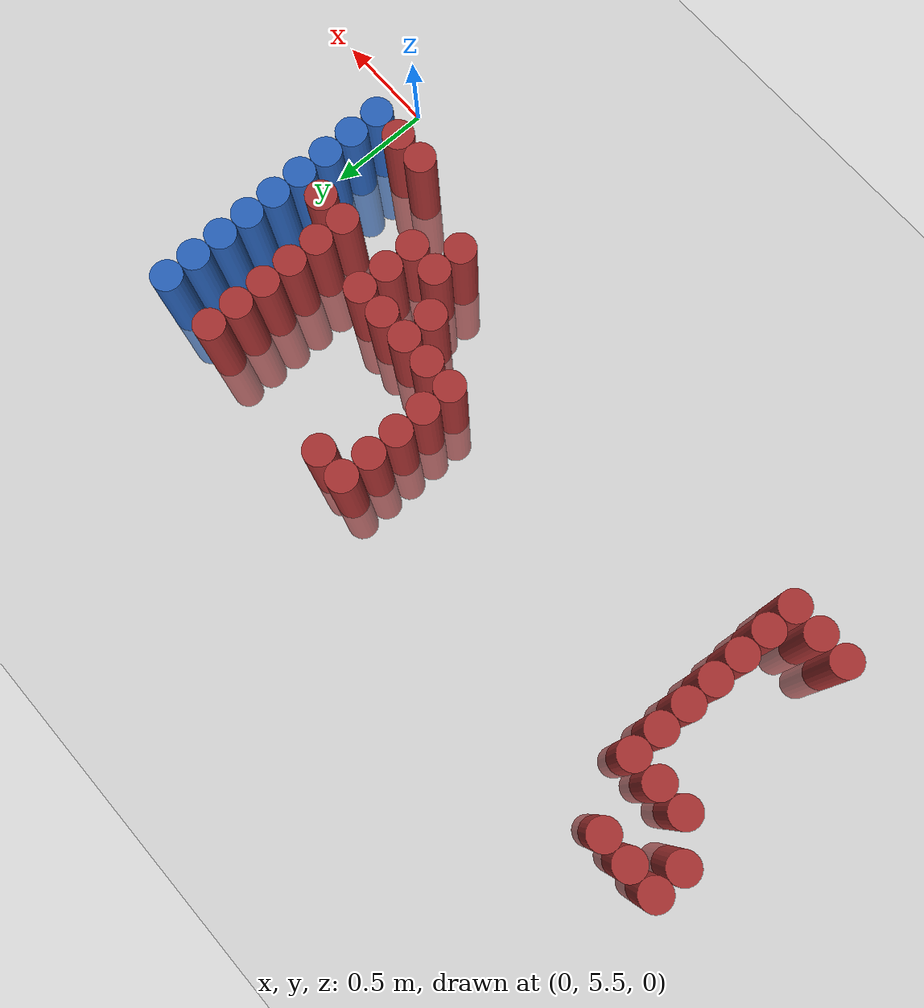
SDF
<sdf version="1.6">
 <world name="default">
  <model name="ground_plane">
   <static>1</static>
   <link name="link">
    <collision name="collision">
     <geometry><plane><normal>0 0 1</normal><size>100 100</size></plane></geometry>
     <surface><friction><ode><mu>100</mu><mu2>50</mu2></ode></friction></surface>
    </collision>
    <visual name="visual">
     <cast_shadows>0</cast_shadows>
     <geometry><plane><normal>0 0 1</normal><size>100 100</size></plane></geometry>
     <material>
      <script><uri>file://media/materials/scripts/gazebo.material</uri><name>Gazebo/Grey</name></script>
     </material>
    </visual>
   </link>
  </model>
  <model name="unit_cylinder_170">
   <static>1</static>
   <pose>-3.375000 6.975000 0.000000 0.000000 0.000000 0.000000</pose>
   <link name="link">
    <inertial>
     <mass>1</mass>
     <inertia><ixx>0.145833</ixx><ixy>0</ixy><ixz>0</ixz><iyy>0.145833</iyy><iyz>0</iyz><izz>0.125</izz></inertia>
    </inertial>
    <collision name="collision">
     <geometry><cylinder><radius>0.075000</radius><length>1</length></cylinder></geometry>
    </collision>
    <visual name="visual">
     <geometry><cylinder><radius>0.075000</radius><length>1</length></cylinder></geometry>
     <material>
      <ambient>0.648000 0.192000 0.192000 1</ambient>
      <diffuse>0.648000 0.192000 0.192000 1</diffuse>
     </material>
     <material>
      <script><name>Gazebo/Grey</name><uri>file://media/materials/scripts/gazebo.material</uri></script>
     </material>
    </visual>
   </link>
  </model>
  <model name="unit_cylinder_171">
   <static>1</static>
   <pose>-3.375000 7.125000 0.000000 0.000000 0.000000 0.000000</pose>
   <link name="link">
    <inertial>
     <mass>1</mass>
     <inertia><ixx>0.145833</ixx><ixy>0</ixy><ixz>0</ixz><iyy>0.145833</iyy><iyz>0</iyz><izz>0.125</izz></inertia>
    </inertial>
    <collision name="collision">
     <geometry><cylinder><radius>0.075000</radius><length>1</length></cylinder></geometry>
    </collision>
    <visual name="visual">
     <geometry><cylinder><radius>0.075000</radius><length>1</length></cylinder></geometry>
     <material>
      <ambient>0.648000 0.192000 0.192000 1</ambient>
      <diffuse>0.648000 0.192000 0.192000 1</diffuse>
     </material>
     <material>
      <script><name>Gazebo/Grey</name><uri>file://media/materials/scripts/gazebo.material</uri></script>
     </material>
    </visual>
   </link>
  </model>
  <model name="unit_cylinder_176">
   <static>1</static>
   <pose>-3.225000 5.925000 0.000000 0.000000 0.000000 0.000000</pose>
   <link name="link">
    <inertial>
     <mass>1</mass>
     <inertia><ixx>0.145833</ixx><ixy>0</ixy><ixz>0</ixz><iyy>0.145833</iyy><iyz>0</iyz><izz>0.125</izz></inertia>
    </inertial>
    <collision name="collision">
     <geometry><cylinder><radius>0.075000</radius><length>1</length></cylinder></geometry>
    </collision>
    <visual name="visual">
     <geometry><cylinder><radius>0.075000</radius><length>1</length></cylinder></geometry>
     <material>
      <ambient>0.648000 0.192000 0.192000 1</ambient>
      <diffuse>0.648000 0.192000 0.192000 1</diffuse>
     </material>
     <material>
      <script><name>Gazebo/Grey</name><uri>file://media/materials/scripts/gazebo.material</uri></script>
     </material>
    </visual>
   </link>
  </model>
  <model name="unit_cylinder_177">
   <static>1</static>
   <pose>-3.225000 6.825000 0.000000 0.000000 0.000000 0.000000</pose>
   <link name="link">
    <inertial>
     <mass>1</mass>
     <inertia><ixx>0.145833</ixx><ixy>0</ixy><ixz>0</ixz><iyy>0.145833</iyy><iyz>0</iyz><izz>0.125</izz></inertia>
    </inertial>
    <collision name="collision">
     <geometry><cylinder><radius>0.075000</radius><length>1</length></cylinder></geometry>
    </collision>
    <visual name="visual">
     <geometry><cylinder><radius>0.075000</radius><length>1</length></cylinder></geometry>
     <material>
      <ambient>0.648000 0.192000 0.192000 1</ambient>
      <diffuse>0.648000 0.192000 0.192000 1</diffuse>
     </material>
     <material>
      <script><name>Gazebo/Grey</name><uri>file://media/materials/scripts/gazebo.material</uri></script>
     </material>
    </visual>
   </link>
  </model>
  <model name="unit_cylinder_178">
   <static>1</static>
   <pose>-3.225000 7.125000 0.000000 0.000000 0.000000 0.000000</pose>
   <link name="link">
    <inertial>
     <mass>1</mass>
     <inertia><ixx>0.145833</ixx><ixy>0</ixy><ixz>0</ixz><iyy>0.145833</iyy><iyz>0</iyz><izz>0.125</izz></inertia>
    </inertial>
    <collision name="collision">
     <geometry><cylinder><radius>0.075000</radius><length>1</length></cylinder></geometry>
    </collision>
    <visual name="visual">
     <geometry><cylinder><radius>0.075000</radius><length>1</length></cylinder></geometry>
     <material>
      <ambient>0.648000 0.192000 0.192000 1</ambient>
      <diffuse>0.648000 0.192000 0.192000 1</diffuse>
     </material>
     <material>
      <script><name>Gazebo/Grey</name><uri>file://media/materials/scripts/gazebo.material</uri></script>
     </material>
    </visual>
   </link>
  </model>
  <model name="unit_cylinder_183">
   <static>1</static>
   <pose>-3.075000 5.925000 0.000000 0.000000 0.000000 0.000000</pose>
   <link name="link">
    <inertial>
     <mass>1</mass>
     <inertia><ixx>0.145833</ixx><ixy>0</ixy><ixz>0</ixz><iyy>0.145833</iyy><iyz>0</iyz><izz>0.125</izz></inertia>
    </inertial>
    <collision name="collision">
     <geometry><cylinder><radius>0.075000</radius><length>1</length></cylinder></geometry>
    </collision>
    <visual name="visual">
     <geometry><cylinder><radius>0.075000</radius><length>1</length></cylinder></geometry>
     <material>
      <ambient>0.648000 0.192000 0.192000 1</ambient>
      <diffuse>0.648000 0.192000 0.192000 1</diffuse>
     </material>
     <material>
      <script><name>Gazebo/Grey</name><uri>file://media/materials/scripts/gazebo.material</uri></script>
     </material>
    </visual>
   </link>
  </model>
  <model name="unit_cylinder_184">
   <static>1</static>
   <pose>-3.075000 6.825000 0.000000 0.000000 0.000000 0.000000</pose>
   <link name="link">
    <inertial>
     <mass>1</mass>
     <inertia><ixx>0.145833</ixx><ixy>0</ixy><ixz>0</ixz><iyy>0.145833</iyy><iyz>0</iyz><izz>0.125</izz></inertia>
    </inertial>
    <collision name="collision">
     <geometry><cylinder><radius>0.075000</radius><length>1</length></cylinder></geometry>
    </collision>
    <visual name="visual">
     <geometry><cylinder><radius>0.075000</radius><length>1</length></cylinder></geometry>
     <material>
      <ambient>0.648000 0.192000 0.192000 1</ambient>
      <diffuse>0.648000 0.192000 0.192000 1</diffuse>
     </material>
     <material>
      <script><name>Gazebo/Grey</name><uri>file://media/materials/scripts/gazebo.material</uri></script>
     </material>
    </visual>
   </link>
  </model>
  <model name="unit_cylinder_185">
   <static>1</static>
   <pose>-3.075000 7.125000 0.000000 0.000000 0.000000 0.000000</pose>
   <link name="link">
    <inertial>
     <mass>1</mass>
     <inertia><ixx>0.145833</ixx><ixy>0</ixy><ixz>0</ixz><iyy>0.145833</iyy><iyz>0</iyz><izz>0.125</izz></inertia>
    </inertial>
    <collision name="collision">
     <geometry><cylinder><radius>0.075000</radius><length>1</length></cylinder></geometry>
    </collision>
    <visual name="visual">
     <geometry><cylinder><radius>0.075000</radius><length>1</length></cylinder></geometry>
     <material>
      <ambient>0.648000 0.192000 0.192000 1</ambient>
      <diffuse>0.648000 0.192000 0.192000 1</diffuse>
     </material>
     <material>
      <script><name>Gazebo/Grey</name><uri>file://media/materials/scripts/gazebo.material</uri></script>
     </material>
    </visual>
   </link>
  </model>
  <model name="unit_cylinder_190">
   <static>1</static>
   <pose>-2.925000 5.925000 0.000000 0.000000 0.000000 0.000000</pose>
   <link name="link">
    <inertial>
     <mass>1</mass>
     <inertia><ixx>0.145833</ixx><ixy>0</ixy><ixz>0</ixz><iyy>0.145833</iyy><iyz>0</iyz><izz>0.125</izz></inertia>
    </inertial>
    <collision name="collision">
     <geometry><cylinder><radius>0.075000</radius><length>1</length></cylinder></geometry>
    </collision>
    <visual name="visual">
     <geometry><cylinder><radius>0.075000</radius><length>1</length></cylinder></geometry>
     <material>
      <ambient>0.648000 0.192000 0.192000 1</ambient>
      <diffuse>0.648000 0.192000 0.192000 1</diffuse>
     </material>
     <material>
      <script><name>Gazebo/Grey</name><uri>file://media/materials/scripts/gazebo.material</uri></script>
     </material>
    </visual>
   </link>
  </model>
  <model name="unit_cylinder_191">
   <static>1</static>
   <pose>-2.925000 6.075000 0.000000 0.000000 0.000000 0.000000</pose>
   <link name="link">
    <inertial>
     <mass>1</mass>
     <inertia><ixx>0.145833</ixx><ixy>0</ixy><ixz>0</ixz><iyy>0.145833</iyy><iyz>0</iyz><izz>0.125</izz></inertia>
    </inertial>
    <collision name="collision">
     <geometry><cylinder><radius>0.075000</radius><length>1</length></cylinder></geometry>
    </collision>
    <visual name="visual">
     <geometry><cylinder><radius>0.075000</radius><length>1</length></cylinder></geometry>
     <material>
      <ambient>0.648000 0.192000 0.192000 1</ambient>
      <diffuse>0.648000 0.192000 0.192000 1</diffuse>
     </material>
     <material>
      <script><name>Gazebo/Grey</name><uri>file://media/materials/scripts/gazebo.material</uri></script>
     </material>
    </visual>
   </link>
  </model>
  <model name="unit_cylinder_192">
   <static>1</static>
   <pose>-2.925000 6.225000 0.000000 0.000000 0.000000 0.000000</pose>
   <link name="link">
    <inertial>
     <mass>1</mass>
     <inertia><ixx>0.145833</ixx><ixy>0</ixy><ixz>0</ixz><iyy>0.145833</iyy><iyz>0</iyz><izz>0.125</izz></inertia>
    </inertial>
    <collision name="collision">
     <geometry><cylinder><radius>0.075000</radius><length>1</length></cylinder></geometry>
    </collision>
    <visual name="visual">
     <geometry><cylinder><radius>0.075000</radius><length>1</length></cylinder></geometry>
     <material>
      <ambient>0.648000 0.192000 0.192000 1</ambient>
      <diffuse>0.648000 0.192000 0.192000 1</diffuse>
     </material>
     <material>
      <script><name>Gazebo/Grey</name><uri>file://media/materials/scripts/gazebo.material</uri></script>
     </material>
    </visual>
   </link>
  </model>
  <model name="unit_cylinder_193">
   <static>1</static>
   <pose>-2.925000 6.375000 0.000000 0.000000 0.000000 0.000000</pose>
   <link name="link">
    <inertial>
     <mass>1</mass>
     <inertia><ixx>0.145833</ixx><ixy>0</ixy><ixz>0</ixz><iyy>0.145833</iyy><iyz>0</iyz><izz>0.125</izz></inertia>
    </inertial>
    <collision name="collision">
     <geometry><cylinder><radius>0.075000</radius><length>1</length></cylinder></geometry>
    </collision>
    <visual name="visual">
     <geometry><cylinder><radius>0.075000</radius><length>1</length></cylinder></geometry>
     <material>
      <ambient>0.648000 0.192000 0.192000 1</ambient>
      <diffuse>0.648000 0.192000 0.192000 1</diffuse>
     </material>
     <material>
      <script><name>Gazebo/Grey</name><uri>file://media/materials/scripts/gazebo.material</uri></script>
     </material>
    </visual>
   </link>
  </model>
  <model name="unit_cylinder_194">
   <static>1</static>
   <pose>-2.925000 6.525000 0.000000 0.000000 0.000000 0.000000</pose>
   <link name="link">
    <inertial>
     <mass>1</mass>
     <inertia><ixx>0.145833</ixx><ixy>0</ixy><ixz>0</ixz><iyy>0.145833</iyy><iyz>0</iyz><izz>0.125</izz></inertia>
    </inertial>
    <collision name="collision">
     <geometry><cylinder><radius>0.075000</radius><length>1</length></cylinder></geometry>
    </collision>
    <visual name="visual">
     <geometry><cylinder><radius>0.075000</radius><length>1</length></cylinder></geometry>
     <material>
      <ambient>0.648000 0.192000 0.192000 1</ambient>
      <diffuse>0.648000 0.192000 0.192000 1</diffuse>
     </material>
     <material>
      <script><name>Gazebo/Grey</name><uri>file://media/materials/scripts/gazebo.material</uri></script>
     </material>
    </visual>
   </link>
  </model>
  <model name="unit_cylinder_195">
   <static>1</static>
   <pose>-2.925000 6.675000 0.000000 0.000000 0.000000 0.000000</pose>
   <link name="link">
    <inertial>
     <mass>1</mass>
     <inertia><ixx>0.145833</ixx><ixy>0</ixy><ixz>0</ixz><iyy>0.145833</iyy><iyz>0</iyz><izz>0.125</izz></inertia>
    </inertial>
    <collision name="collision">
     <geometry><cylinder><radius>0.075000</radius><length>1</length></cylinder></geometry>
    </collision>
    <visual name="visual">
     <geometry><cylinder><radius>0.075000</radius><length>1</length></cylinder></geometry>
     <material>
      <ambient>0.648000 0.192000 0.192000 1</ambient>
      <diffuse>0.648000 0.192000 0.192000 1</diffuse>
     </material>
     <material>
      <script><name>Gazebo/Grey</name><uri>file://media/materials/scripts/gazebo.material</uri></script>
     </material>
    </visual>
   </link>
  </model>
  <model name="unit_cylinder_196">
   <static>1</static>
   <pose>-2.925000 6.825000 0.000000 0.000000 0.000000 0.000000</pose>
   <link name="link">
    <inertial>
     <mass>1</mass>
     <inertia><ixx>0.145833</ixx><ixy>0</ixy><ixz>0</ixz><iyy>0.145833</iyy><iyz>0</iyz><izz>0.125</izz></inertia>
    </inertial>
    <collision name="collision">
     <geometry><cylinder><radius>0.075000</radius><length>1</length></cylinder></geometry>
    </collision>
    <visual name="visual">
     <geometry><cylinder><radius>0.075000</radius><length>1</length></cylinder></geometry>
     <material>
      <ambient>0.648000 0.192000 0.192000 1</ambient>
      <diffuse>0.648000 0.192000 0.192000 1</diffuse>
     </material>
     <material>
      <script><name>Gazebo/Grey</name><uri>file://media/materials/scripts/gazebo.material</uri></script>
     </material>
    </visual>
   </link>
  </model>
  <model name="unit_cylinder_215">
   <static>1</static>
   <pose>-1.275000 6.375000 0.000000 0.000000 0.000000 0.000000</pose>
   <link name="link">
    <inertial>
     <mass>1</mass>
     <inertia><ixx>0.145833</ixx><ixy>0</ixy><ixz>0</ixz><iyy>0.145833</iyy><iyz>0</iyz><izz>0.125</izz></inertia>
    </inertial>
    <collision name="collision">
     <geometry><cylinder><radius>0.075000</radius><length>1</length></cylinder></geometry>
    </collision>
    <visual name="visual">
     <geometry><cylinder><radius>0.075000</radius><length>1</length></cylinder></geometry>
     <material>
      <ambient>0.648000 0.192000 0.192000 1</ambient>
      <diffuse>0.648000 0.192000 0.192000 1</diffuse>
     </material>
     <material>
      <script><name>Gazebo/Grey</name><uri>file://media/materials/scripts/gazebo.material</uri></script>
     </material>
    </visual>
   </link>
  </model>
  <model name="unit_cylinder_216">
   <static>1</static>
   <pose>-1.275000 6.525000 0.000000 0.000000 0.000000 0.000000</pose>
   <link name="link">
    <inertial>
     <mass>1</mass>
     <inertia><ixx>0.145833</ixx><ixy>0</ixy><ixz>0</ixz><iyy>0.145833</iyy><iyz>0</iyz><izz>0.125</izz></inertia>
    </inertial>
    <collision name="collision">
     <geometry><cylinder><radius>0.075000</radius><length>1</length></cylinder></geometry>
    </collision>
    <visual name="visual">
     <geometry><cylinder><radius>0.075000</radius><length>1</length></cylinder></geometry>
     <material>
      <ambient>0.648000 0.192000 0.192000 1</ambient>
      <diffuse>0.648000 0.192000 0.192000 1</diffuse>
     </material>
     <material>
      <script><name>Gazebo/Grey</name><uri>file://media/materials/scripts/gazebo.material</uri></script>
     </material>
    </visual>
   </link>
  </model>
  <model name="unit_cylinder_217">
   <static>1</static>
   <pose>-1.275000 6.675000 0.000000 0.000000 0.000000 0.000000</pose>
   <link name="link">
    <inertial>
     <mass>1</mass>
     <inertia><ixx>0.145833</ixx><ixy>0</ixy><ixz>0</ixz><iyy>0.145833</iyy><iyz>0</iyz><izz>0.125</izz></inertia>
    </inertial>
    <collision name="collision">
     <geometry><cylinder><radius>0.075000</radius><length>1</length></cylinder></geometry>
    </collision>
    <visual name="visual">
     <geometry><cylinder><radius>0.075000</radius><length>1</length></cylinder></geometry>
     <material>
      <ambient>0.648000 0.192000 0.192000 1</ambient>
      <diffuse>0.648000 0.192000 0.192000 1</diffuse>
     </material>
     <material>
      <script><name>Gazebo/Grey</name><uri>file://media/materials/scripts/gazebo.material</uri></script>
     </material>
    </visual>
   </link>
  </model>
  <model name="unit_cylinder_218">
   <static>1</static>
   <pose>-1.275000 6.825000 0.000000 0.000000 0.000000 0.000000</pose>
   <link name="link">
    <inertial>
     <mass>1</mass>
     <inertia><ixx>0.145833</ixx><ixy>0</ixy><ixz>0</ixz><iyy>0.145833</iyy><iyz>0</iyz><izz>0.125</izz></inertia>
    </inertial>
    <collision name="collision">
     <geometry><cylinder><radius>0.075000</radius><length>1</length></cylinder></geometry>
    </collision>
    <visual name="visual">
     <geometry><cylinder><radius>0.075000</radius><length>1</length></cylinder></geometry>
     <material>
      <ambient>0.648000 0.192000 0.192000 1</ambient>
      <diffuse>0.648000 0.192000 0.192000 1</diffuse>
     </material>
     <material>
      <script><name>Gazebo/Grey</name><uri>file://media/materials/scripts/gazebo.material</uri></script>
     </material>
    </visual>
   </link>
  </model>
  <model name="unit_cylinder_219">
   <static>1</static>
   <pose>-1.275000 6.975000 0.000000 0.000000 0.000000 0.000000</pose>
   <link name="link">
    <inertial>
     <mass>1</mass>
     <inertia><ixx>0.145833</ixx><ixy>0</ixy><ixz>0</ixz><iyy>0.145833</iyy><iyz>0</iyz><izz>0.125</izz></inertia>
    </inertial>
    <collision name="collision">
     <geometry><cylinder><radius>0.075000</radius><length>1</length></cylinder></geometry>
    </collision>
    <visual name="visual">
     <geometry><cylinder><radius>0.075000</radius><length>1</length></cylinder></geometry>
     <material>
      <ambient>0.648000 0.192000 0.192000 1</ambient>
      <diffuse>0.648000 0.192000 0.192000 1</diffuse>
     </material>
     <material>
      <script><name>Gazebo/Grey</name><uri>file://media/materials/scripts/gazebo.material</uri></script>
     </material>
    </visual>
   </link>
  </model>
  <model name="unit_cylinder_220">
   <static>1</static>
   <pose>-1.125000 6.375000 0.000000 0.000000 0.000000 0.000000</pose>
   <link name="link">
    <inertial>
     <mass>1</mass>
     <inertia><ixx>0.145833</ixx><ixy>0</ixy><ixz>0</ixz><iyy>0.145833</iyy><iyz>0</iyz><izz>0.125</izz></inertia>
    </inertial>
    <collision name="collision">
     <geometry><cylinder><radius>0.075000</radius><length>1</length></cylinder></geometry>
    </collision>
    <visual name="visual">
     <geometry><cylinder><radius>0.075000</radius><length>1</length></cylinder></geometry>
     <material>
      <ambient>0.648000 0.192000 0.192000 1</ambient>
      <diffuse>0.648000 0.192000 0.192000 1</diffuse>
     </material>
     <material>
      <script><name>Gazebo/Grey</name><uri>file://media/materials/scripts/gazebo.material</uri></script>
     </material>
    </visual>
   </link>
  </model>
  <model name="unit_cylinder_221">
   <static>1</static>
   <pose>-1.125000 6.975000 0.000000 0.000000 0.000000 0.000000</pose>
   <link name="link">
    <inertial>
     <mass>1</mass>
     <inertia><ixx>0.145833</ixx><ixy>0</ixy><ixz>0</ixz><iyy>0.145833</iyy><iyz>0</iyz><izz>0.125</izz></inertia>
    </inertial>
    <collision name="collision">
     <geometry><cylinder><radius>0.075000</radius><length>1</length></cylinder></geometry>
    </collision>
    <visual name="visual">
     <geometry><cylinder><radius>0.075000</radius><length>1</length></cylinder></geometry>
     <material>
      <ambient>0.648000 0.192000 0.192000 1</ambient>
      <diffuse>0.648000 0.192000 0.192000 1</diffuse>
     </material>
     <material>
      <script><name>Gazebo/Grey</name><uri>file://media/materials/scripts/gazebo.material</uri></script>
     </material>
    </visual>
   </link>
  </model>
  <model name="unit_cylinder_223">
   <static>1</static>
   <pose>-0.975000 6.225000 0.000000 0.000000 0.000000 0.000000</pose>
   <link name="link">
    <inertial>
     <mass>1</mass>
     <inertia><ixx>0.145833</ixx><ixy>0</ixy><ixz>0</ixz><iyy>0.145833</iyy><iyz>0</iyz><izz>0.125</izz></inertia>
    </inertial>
    <collision name="collision">
     <geometry><cylinder><radius>0.075000</radius><length>1</length></cylinder></geometry>
    </collision>
    <visual name="visual">
     <geometry><cylinder><radius>0.075000</radius><length>1</length></cylinder></geometry>
     <material>
      <ambient>0.648000 0.192000 0.192000 1</ambient>
      <diffuse>0.648000 0.192000 0.192000 1</diffuse>
     </material>
     <material>
      <script><name>Gazebo/Grey</name><uri>file://media/materials/scripts/gazebo.material</uri></script>
     </material>
    </visual>
   </link>
  </model>
  <model name="unit_cylinder_224">
   <static>1</static>
   <pose>-0.975000 6.375000 0.000000 0.000000 0.000000 0.000000</pose>
   <link name="link">
    <inertial>
     <mass>1</mass>
     <inertia><ixx>0.145833</ixx><ixy>0</ixy><ixz>0</ixz><iyy>0.145833</iyy><iyz>0</iyz><izz>0.125</izz></inertia>
    </inertial>
    <collision name="collision">
     <geometry><cylinder><radius>0.075000</radius><length>1</length></cylinder></geometry>
    </collision>
    <visual name="visual">
     <geometry><cylinder><radius>0.075000</radius><length>1</length></cylinder></geometry>
     <material>
      <ambient>0.648000 0.192000 0.192000 1</ambient>
      <diffuse>0.648000 0.192000 0.192000 1</diffuse>
     </material>
     <material>
      <script><name>Gazebo/Grey</name><uri>file://media/materials/scripts/gazebo.material</uri></script>
     </material>
    </visual>
   </link>
  </model>
  <model name="unit_cylinder_227">
   <static>1</static>
   <pose>-0.825000 5.925000 0.000000 0.000000 0.000000 0.000000</pose>
   <link name="link">
    <inertial>
     <mass>1</mass>
     <inertia><ixx>0.145833</ixx><ixy>0</ixy><ixz>0</ixz><iyy>0.145833</iyy><iyz>0</iyz><izz>0.125</izz></inertia>
    </inertial>
    <collision name="collision">
     <geometry><cylinder><radius>0.075000</radius><length>1</length></cylinder></geometry>
    </collision>
    <visual name="visual">
     <geometry><cylinder><radius>0.075000</radius><length>1</length></cylinder></geometry>
     <material>
      <ambient>0.648000 0.192000 0.192000 1</ambient>
      <diffuse>0.648000 0.192000 0.192000 1</diffuse>
     </material>
     <material>
      <script><name>Gazebo/Grey</name><uri>file://media/materials/scripts/gazebo.material</uri></script>
     </material>
    </visual>
   </link>
  </model>
  <model name="unit_cylinder_228">
   <static>1</static>
   <pose>-0.825000 6.075000 0.000000 0.000000 0.000000 0.000000</pose>
   <link name="link">
    <inertial>
     <mass>1</mass>
     <inertia><ixx>0.145833</ixx><ixy>0</ixy><ixz>0</ixz><iyy>0.145833</iyy><iyz>0</iyz><izz>0.125</izz></inertia>
    </inertial>
    <collision name="collision">
     <geometry><cylinder><radius>0.075000</radius><length>1</length></cylinder></geometry>
    </collision>
    <visual name="visual">
     <geometry><cylinder><radius>0.075000</radius><length>1</length></cylinder></geometry>
     <material>
      <ambient>0.648000 0.192000 0.192000 1</ambient>
      <diffuse>0.648000 0.192000 0.192000 1</diffuse>
     </material>
     <material>
      <script><name>Gazebo/Grey</name><uri>file://media/materials/scripts/gazebo.material</uri></script>
     </material>
    </visual>
   </link>
  </model>
  <model name="unit_cylinder_229">
   <static>1</static>
   <pose>-0.825000 6.375000 0.000000 0.000000 0.000000 0.000000</pose>
   <link name="link">
    <inertial>
     <mass>1</mass>
     <inertia><ixx>0.145833</ixx><ixy>0</ixy><ixz>0</ixz><iyy>0.145833</iyy><iyz>0</iyz><izz>0.125</izz></inertia>
    </inertial>
    <collision name="collision">
     <geometry><cylinder><radius>0.075000</radius><length>1</length></cylinder></geometry>
    </collision>
    <visual name="visual">
     <geometry><cylinder><radius>0.075000</radius><length>1</length></cylinder></geometry>
     <material>
      <ambient>0.648000 0.192000 0.192000 1</ambient>
      <diffuse>0.648000 0.192000 0.192000 1</diffuse>
     </material>
     <material>
      <script><name>Gazebo/Grey</name><uri>file://media/materials/scripts/gazebo.material</uri></script>
     </material>
    </visual>
   </link>
  </model>
  <model name="unit_cylinder_236">
   <static>1</static>
   <pose>-0.675000 6.075000 0.000000 0.000000 0.000000 0.000000</pose>
   <link name="link">
    <inertial>
     <mass>1</mass>
     <inertia><ixx>0.145833</ixx><ixy>0</ixy><ixz>0</ixz><iyy>0.145833</iyy><iyz>0</iyz><izz>0.125</izz></inertia>
    </inertial>
    <collision name="collision">
     <geometry><cylinder><radius>0.075000</radius><length>1</length></cylinder></geometry>
    </collision>
    <visual name="visual">
     <geometry><cylinder><radius>0.075000</radius><length>1</length></cylinder></geometry>
     <material>
      <ambient>0.648000 0.192000 0.192000 1</ambient>
      <diffuse>0.648000 0.192000 0.192000 1</diffuse>
     </material>
     <material>
      <script><name>Gazebo/Grey</name><uri>file://media/materials/scripts/gazebo.material</uri></script>
     </material>
    </visual>
   </link>
  </model>
  <model name="unit_cylinder_237">
   <static>1</static>
   <pose>-0.675000 6.225000 0.000000 0.000000 0.000000 0.000000</pose>
   <link name="link">
    <inertial>
     <mass>1</mass>
     <inertia><ixx>0.145833</ixx><ixy>0</ixy><ixz>0</ixz><iyy>0.145833</iyy><iyz>0</iyz><izz>0.125</izz></inertia>
    </inertial>
    <collision name="collision">
     <geometry><cylinder><radius>0.075000</radius><length>1</length></cylinder></geometry>
    </collision>
    <visual name="visual">
     <geometry><cylinder><radius>0.075000</radius><length>1</length></cylinder></geometry>
     <material>
      <ambient>0.648000 0.192000 0.192000 1</ambient>
      <diffuse>0.648000 0.192000 0.192000 1</diffuse>
     </material>
     <material>
      <script><name>Gazebo/Grey</name><uri>file://media/materials/scripts/gazebo.material</uri></script>
     </material>
    </visual>
   </link>
  </model>
  <model name="unit_cylinder_238">
   <static>1</static>
   <pose>-0.675000 6.375000 0.000000 0.000000 0.000000 0.000000</pose>
   <link name="link">
    <inertial>
     <mass>1</mass>
     <inertia><ixx>0.145833</ixx><ixy>0</ixy><ixz>0</ixz><iyy>0.145833</iyy><iyz>0</iyz><izz>0.125</izz></inertia>
    </inertial>
    <collision name="collision">
     <geometry><cylinder><radius>0.075000</radius><length>1</length></cylinder></geometry>
    </collision>
    <visual name="visual">
     <geometry><cylinder><radius>0.075000</radius><length>1</length></cylinder></geometry>
     <material>
      <ambient>0.648000 0.192000 0.192000 1</ambient>
      <diffuse>0.648000 0.192000 0.192000 1</diffuse>
     </material>
     <material>
      <script><name>Gazebo/Grey</name><uri>file://media/materials/scripts/gazebo.material</uri></script>
     </material>
    </visual>
   </link>
  </model>
  <model name="unit_cylinder_246">
   <static>1</static>
   <pose>-0.375000 5.775000 0.000000 0.000000 0.000000 0.000000</pose>
   <link name="link">
    <inertial>
     <mass>1</mass>
     <inertia><ixx>0.145833</ixx><ixy>0</ixy><ixz>0</ixz><iyy>0.145833</iyy><iyz>0</iyz><izz>0.125</izz></inertia>
    </inertial>
    <collision name="collision">
     <geometry><cylinder><radius>0.075000</radius><length>1</length></cylinder></geometry>
    </collision>
    <visual name="visual">
     <geometry><cylinder><radius>0.075000</radius><length>1</length></cylinder></geometry>
     <material>
      <ambient>0.648000 0.192000 0.192000 1</ambient>
      <diffuse>0.648000 0.192000 0.192000 1</diffuse>
     </material>
     <material>
      <script><name>Gazebo/Grey</name><uri>file://media/materials/scripts/gazebo.material</uri></script>
     </material>
    </visual>
   </link>
  </model>
  <model name="unit_cylinder_247">
   <static>1</static>
   <pose>-0.375000 6.225000 0.000000 0.000000 0.000000 0.000000</pose>
   <link name="link">
    <inertial>
     <mass>1</mass>
     <inertia><ixx>0.145833</ixx><ixy>0</ixy><ixz>0</ixz><iyy>0.145833</iyy><iyz>0</iyz><izz>0.125</izz></inertia>
    </inertial>
    <collision name="collision">
     <geometry><cylinder><radius>0.075000</radius><length>1</length></cylinder></geometry>
    </collision>
    <visual name="visual">
     <geometry><cylinder><radius>0.075000</radius><length>1</length></cylinder></geometry>
     <material>
      <ambient>0.648000 0.192000 0.192000 1</ambient>
      <diffuse>0.648000 0.192000 0.192000 1</diffuse>
     </material>
     <material>
      <script><name>Gazebo/Grey</name><uri>file://media/materials/scripts/gazebo.material</uri></script>
     </material>
    </visual>
   </link>
  </model>
  <model name="unit_cylinder_248">
   <static>1</static>
   <pose>-0.375000 6.375000 0.000000 0.000000 0.000000 0.000000</pose>
   <link name="link">
    <inertial>
     <mass>1</mass>
     <inertia><ixx>0.145833</ixx><ixy>0</ixy><ixz>0</ixz><iyy>0.145833</iyy><iyz>0</iyz><izz>0.125</izz></inertia>
    </inertial>
    <collision name="collision">
     <geometry><cylinder><radius>0.075000</radius><length>1</length></cylinder></geometry>
    </collision>
    <visual name="visual">
     <geometry><cylinder><radius>0.075000</radius><length>1</length></cylinder></geometry>
     <material>
      <ambient>0.648000 0.192000 0.192000 1</ambient>
      <diffuse>0.648000 0.192000 0.192000 1</diffuse>
     </material>
     <material>
      <script><name>Gazebo/Grey</name><uri>file://media/materials/scripts/gazebo.material</uri></script>
     </material>
    </visual>
   </link>
  </model>
  <model name="unit_cylinder_249">
   <static>1</static>
   <pose>-0.375000 6.525000 0.000000 0.000000 0.000000 0.000000</pose>
   <link name="link">
    <inertial>
     <mass>1</mass>
     <inertia><ixx>0.145833</ixx><ixy>0</ixy><ixz>0</ixz><iyy>0.145833</iyy><iyz>0</iyz><izz>0.125</izz></inertia>
    </inertial>
    <collision name="collision">
     <geometry><cylinder><radius>0.075000</radius><length>1</length></cylinder></geometry>
    </collision>
    <visual name="visual">
     <geometry><cylinder><radius>0.075000</radius><length>1</length></cylinder></geometry>
     <material>
      <ambient>0.648000 0.192000 0.192000 1</ambient>
      <diffuse>0.648000 0.192000 0.192000 1</diffuse>
     </material>
     <material>
      <script><name>Gazebo/Grey</name><uri>file://media/materials/scripts/gazebo.material</uri></script>
     </material>
    </visual>
   </link>
  </model>
  <model name="unit_cylinder_250">
   <static>1</static>
   <pose>-0.375000 6.675000 0.000000 0.000000 0.000000 0.000000</pose>
   <link name="link">
    <inertial>
     <mass>1</mass>
     <inertia><ixx>0.145833</ixx><ixy>0</ixy><ixz>0</ixz><iyy>0.145833</iyy><iyz>0</iyz><izz>0.125</izz></inertia>
    </inertial>
    <collision name="collision">
     <geometry><cylinder><radius>0.075000</radius><length>1</length></cylinder></geometry>
    </collision>
    <visual name="visual">
     <geometry><cylinder><radius>0.075000</radius><length>1</length></cylinder></geometry>
     <material>
      <ambient>0.648000 0.192000 0.192000 1</ambient>
      <diffuse>0.648000 0.192000 0.192000 1</diffuse>
     </material>
     <material>
      <script><name>Gazebo/Grey</name><uri>file://media/materials/scripts/gazebo.material</uri></script>
     </material>
    </visual>
   </link>
  </model>
  <model name="unit_cylinder_251">
   <static>1</static>
   <pose>-0.375000 6.825000 0.000000 0.000000 0.000000 0.000000</pose>
   <link name="link">
    <inertial>
     <mass>1</mass>
     <inertia><ixx>0.145833</ixx><ixy>0</ixy><ixz>0</ixz><iyy>0.145833</iyy><iyz>0</iyz><izz>0.125</izz></inertia>
    </inertial>
    <collision name="collision">
     <geometry><cylinder><radius>0.075000</radius><length>1</length></cylinder></geometry>
    </collision>
    <visual name="visual">
     <geometry><cylinder><radius>0.075000</radius><length>1</length></cylinder></geometry>
     <material>
      <ambient>0.648000 0.192000 0.192000 1</ambient>
      <diffuse>0.648000 0.192000 0.192000 1</diffuse>
     </material>
     <material>
      <script><name>Gazebo/Grey</name><uri>file://media/materials/scripts/gazebo.material</uri></script>
     </material>
    </visual>
   </link>
  </model>
  <model name="unit_cylinder_252">
   <static>1</static>
   <pose>-0.375000 6.975000 0.000000 0.000000 0.000000 0.000000</pose>
   <link name="link">
    <inertial>
     <mass>1</mass>
     <inertia><ixx>0.145833</ixx><ixy>0</ixy><ixz>0</ixz><iyy>0.145833</iyy><iyz>0</iyz><izz>0.125</izz></inertia>
    </inertial>
    <collision name="collision">
     <geometry><cylinder><radius>0.075000</radius><length>1</length></cylinder></geometry>
    </collision>
    <visual name="visual">
     <geometry><cylinder><radius>0.075000</radius><length>1</length></cylinder></geometry>
     <material>
      <ambient>0.648000 0.192000 0.192000 1</ambient>
      <diffuse>0.648000 0.192000 0.192000 1</diffuse>
     </material>
     <material>
      <script><name>Gazebo/Grey</name><uri>file://media/materials/scripts/gazebo.material</uri></script>
     </material>
    </visual>
   </link>
  </model>
  <model name="unit_cylinder_257">
   <static>1</static>
   <pose>-0.225000 5.775000 0.000000 0.000000 0.000000 0.000000</pose>
   <link name="link">
    <inertial>
     <mass>1</mass>
     <inertia><ixx>0.145833</ixx><ixy>0</ixy><ixz>0</ixz><iyy>0.145833</iyy><iyz>0</iyz><izz>0.125</izz></inertia>
    </inertial>
    <collision name="collision">
     <geometry><cylinder><radius>0.075000</radius><length>1</length></cylinder></geometry>
    </collision>
    <visual name="visual">
     <geometry><cylinder><radius>0.075000</radius><length>1</length></cylinder></geometry>
     <material>
      <ambient>0.648000 0.192000 0.192000 1</ambient>
      <diffuse>0.648000 0.192000 0.192000 1</diffuse>
     </material>
     <material>
      <script><name>Gazebo/Grey</name><uri>file://media/materials/scripts/gazebo.material</uri></script>
     </material>
    </visual>
   </link>
  </model>
  <model name="unit_cylinder_258">
   <static>1</static>
   <pose>-0.225000 6.225000 0.000000 0.000000 0.000000 0.000000</pose>
   <link name="link">
    <inertial>
     <mass>1</mass>
     <inertia><ixx>0.145833</ixx><ixy>0</ixy><ixz>0</ixz><iyy>0.145833</iyy><iyz>0</iyz><izz>0.125</izz></inertia>
    </inertial>
    <collision name="collision">
     <geometry><cylinder><radius>0.075000</radius><length>1</length></cylinder></geometry>
    </collision>
    <visual name="visual">
     <geometry><cylinder><radius>0.075000</radius><length>1</length></cylinder></geometry>
     <material>
      <ambient>0.648000 0.192000 0.192000 1</ambient>
      <diffuse>0.648000 0.192000 0.192000 1</diffuse>
     </material>
     <material>
      <script><name>Gazebo/Grey</name><uri>file://media/materials/scripts/gazebo.material</uri></script>
     </material>
    </visual>
   </link>
  </model>
  <model name="unit_cylinder_267">
   <static>1</static>
   <pose>-0.075000 5.775000 0.000000 0.000000 0.000000 0.000000</pose>
   <link name="link">
    <inertial>
     <mass>1</mass>
     <inertia><ixx>0.145833</ixx><ixy>0</ixy><ixz>0</ixz><iyy>0.145833</iyy><iyz>0</iyz><izz>0.125</izz></inertia>
    </inertial>
    <collision name="collision">
     <geometry><cylinder><radius>0.075000</radius><length>1</length></cylinder></geometry>
    </collision>
    <visual name="visual">
     <geometry><cylinder><radius>0.075000</radius><length>1</length></cylinder></geometry>
     <material>
      <ambient>0.152000 0.379000 0.720000 1</ambient>
      <diffuse>0.152000 0.379000 0.720000 1</diffuse>
     </material>
     <material>
      <script><name>Gazebo/Grey</name><uri>file://media/materials/scripts/gazebo.material</uri></script>
     </material>
    </visual>
   </link>
  </model>
  <model name="unit_cylinder_268">
   <static>1</static>
   <pose>-0.075000 5.925000 0.000000 0.000000 0.000000 0.000000</pose>
   <link name="link">
    <inertial>
     <mass>1</mass>
     <inertia><ixx>0.145833</ixx><ixy>0</ixy><ixz>0</ixz><iyy>0.145833</iyy><iyz>0</iyz><izz>0.125</izz></inertia>
    </inertial>
    <collision name="collision">
     <geometry><cylinder><radius>0.075000</radius><length>1</length></cylinder></geometry>
    </collision>
    <visual name="visual">
     <geometry><cylinder><radius>0.075000</radius><length>1</length></cylinder></geometry>
     <material>
      <ambient>0.152000 0.379000 0.720000 1</ambient>
      <diffuse>0.152000 0.379000 0.720000 1</diffuse>
     </material>
     <material>
      <script><name>Gazebo/Grey</name><uri>file://media/materials/scripts/gazebo.material</uri></script>
     </material>
    </visual>
   </link>
  </model>
  <model name="unit_cylinder_269">
   <static>1</static>
   <pose>-0.075000 6.075000 0.000000 0.000000 0.000000 0.000000</pose>
   <link name="link">
    <inertial>
     <mass>1</mass>
     <inertia><ixx>0.145833</ixx><ixy>0</ixy><ixz>0</ixz><iyy>0.145833</iyy><iyz>0</iyz><izz>0.125</izz></inertia>
    </inertial>
    <collision name="collision">
     <geometry><cylinder><radius>0.075000</radius><length>1</length></cylinder></geometry>
    </collision>
    <visual name="visual">
     <geometry><cylinder><radius>0.075000</radius><length>1</length></cylinder></geometry>
     <material>
      <ambient>0.152000 0.379000 0.720000 1</ambient>
      <diffuse>0.152000 0.379000 0.720000 1</diffuse>
     </material>
     <material>
      <script><name>Gazebo/Grey</name><uri>file://media/materials/scripts/gazebo.material</uri></script>
     </material>
    </visual>
   </link>
  </model>
  <model name="unit_cylinder_270">
   <static>1</static>
   <pose>-0.075000 6.225000 0.000000 0.000000 0.000000 0.000000</pose>
   <link name="link">
    <inertial>
     <mass>1</mass>
     <inertia><ixx>0.145833</ixx><ixy>0</ixy><ixz>0</ixz><iyy>0.145833</iyy><iyz>0</iyz><izz>0.125</izz></inertia>
    </inertial>
    <collision name="collision">
     <geometry><cylinder><radius>0.075000</radius><length>1</length></cylinder></geometry>
    </collision>
    <visual name="visual">
     <geometry><cylinder><radius>0.075000</radius><length>1</length></cylinder></geometry>
     <material>
      <ambient>0.152000 0.379000 0.720000 1</ambient>
      <diffuse>0.152000 0.379000 0.720000 1</diffuse>
     </material>
     <material>
      <script><name>Gazebo/Grey</name><uri>file://media/materials/scripts/gazebo.material</uri></script>
     </material>
    </visual>
   </link>
  </model>
  <model name="unit_cylinder_271">
   <static>1</static>
   <pose>-0.075000 6.375000 0.000000 0.000000 0.000000 0.000000</pose>
   <link name="link">
    <inertial>
     <mass>1</mass>
     <inertia><ixx>0.145833</ixx><ixy>0</ixy><ixz>0</ixz><iyy>0.145833</iyy><iyz>0</iyz><izz>0.125</izz></inertia>
    </inertial>
    <collision name="collision">
     <geometry><cylinder><radius>0.075000</radius><length>1</length></cylinder></geometry>
    </collision>
    <visual name="visual">
     <geometry><cylinder><radius>0.075000</radius><length>1</length></cylinder></geometry>
     <material>
      <ambient>0.152000 0.379000 0.720000 1</ambient>
      <diffuse>0.152000 0.379000 0.720000 1</diffuse>
     </material>
     <material>
      <script><name>Gazebo/Grey</name><uri>file://media/materials/scripts/gazebo.material</uri></script>
     </material>
    </visual>
   </link>
  </model>
  <model name="unit_cylinder_272">
   <static>1</static>
   <pose>-0.075000 6.525000 0.000000 0.000000 0.000000 0.000000</pose>
   <link name="link">
    <inertial>
     <mass>1</mass>
     <inertia><ixx>0.145833</ixx><ixy>0</ixy><ixz>0</ixz><iyy>0.145833</iyy><iyz>0</iyz><izz>0.125</izz></inertia>
    </inertial>
    <collision name="collision">
     <geometry><cylinder><radius>0.075000</radius><length>1</length></cylinder></geometry>
    </collision>
    <visual name="visual">
     <geometry><cylinder><radius>0.075000</radius><length>1</length></cylinder></geometry>
     <material>
      <ambient>0.152000 0.379000 0.720000 1</ambient>
      <diffuse>0.152000 0.379000 0.720000 1</diffuse>
     </material>
     <material>
      <script><name>Gazebo/Grey</name><uri>file://media/materials/scripts/gazebo.material</uri></script>
     </material>
    </visual>
   </link>
  </model>
  <model name="unit_cylinder_273">
   <static>1</static>
   <pose>-0.075000 6.675000 0.000000 0.000000 0.000000 0.000000</pose>
   <link name="link">
    <inertial>
     <mass>1</mass>
     <inertia><ixx>0.145833</ixx><ixy>0</ixy><ixz>0</ixz><iyy>0.145833</iyy><iyz>0</iyz><izz>0.125</izz></inertia>
    </inertial>
    <collision name="collision">
     <geometry><cylinder><radius>0.075000</radius><length>1</length></cylinder></geometry>
    </collision>
    <visual name="visual">
     <geometry><cylinder><radius>0.075000</radius><length>1</length></cylinder></geometry>
     <material>
      <ambient>0.152000 0.379000 0.720000 1</ambient>
      <diffuse>0.152000 0.379000 0.720000 1</diffuse>
     </material>
     <material>
      <script><name>Gazebo/Grey</name><uri>file://media/materials/scripts/gazebo.material</uri></script>
     </material>
    </visual>
   </link>
  </model>
  <model name="unit_cylinder_274">
   <static>1</static>
   <pose>-0.075000 6.825000 0.000000 0.000000 0.000000 0.000000</pose>
   <link name="link">
    <inertial>
     <mass>1</mass>
     <inertia><ixx>0.145833</ixx><ixy>0</ixy><ixz>0</ixz><iyy>0.145833</iyy><iyz>0</iyz><izz>0.125</izz></inertia>
    </inertial>
    <collision name="collision">
     <geometry><cylinder><radius>0.075000</radius><length>1</length></cylinder></geometry>
    </collision>
    <visual name="visual">
     <geometry><cylinder><radius>0.075000</radius><length>1</length></cylinder></geometry>
     <material>
      <ambient>0.152000 0.379000 0.720000 1</ambient>
      <diffuse>0.152000 0.379000 0.720000 1</diffuse>
     </material>
     <material>
      <script><name>Gazebo/Grey</name><uri>file://media/materials/scripts/gazebo.material</uri></script>
     </material>
    </visual>
   </link>
  </model>
  <model name="unit_cylinder_275">
   <static>1</static>
   <pose>-0.075000 6.975000 0.000000 0.000000 0.000000 0.000000</pose>
   <link name="link">
    <inertial>
     <mass>1</mass>
     <inertia><ixx>0.145833</ixx><ixy>0</ixy><ixz>0</ixz><iyy>0.145833</iyy><iyz>0</iyz><izz>0.125</izz></inertia>
    </inertial>
    <collision name="collision">
     <geometry><cylinder><radius>0.075000</radius><length>1</length></cylinder></geometry>
    </collision>
    <visual name="visual">
     <geometry><cylinder><radius>0.075000</radius><length>1</length></cylinder></geometry>
     <material>
      <ambient>0.152000 0.379000 0.720000 1</ambient>
      <diffuse>0.152000 0.379000 0.720000 1</diffuse>
     </material>
     <material>
      <script><name>Gazebo/Grey</name><uri>file://media/materials/scripts/gazebo.material</uri></script>
     </material>
    </visual>
   </link>
  </model>
 </world>
</sdf>
